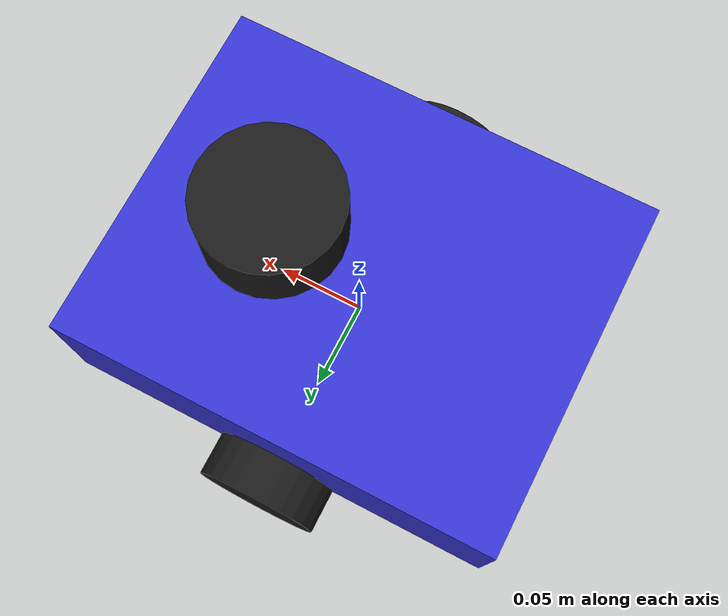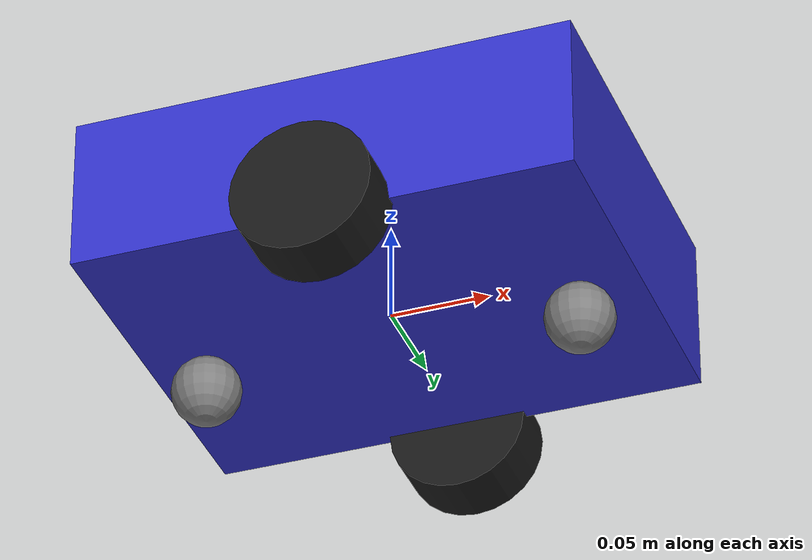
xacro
<?xml version="1.0"?>
<robot name="swarm_bot" xmlns:xacro="http://www.ros.org/wiki/xacro">

  <!-- ==================== NAMESPACE ARGUMENT ==================== -->
  <xacro:arg name="robot_namespace" default="robot_1"/>

  <!-- ==================== PROPERTIES ==================== -->
  <xacro:property name="ns" value="$(arg robot_namespace)"/>
  <xacro:property name="chassis_length" value="0.25"/>
  <xacro:property name="chassis_width" value="0.20"/>
  <xacro:property name="chassis_height" value="0.08"/>
  <xacro:property name="wheel_radius" value="0.035"/>
  <xacro:property name="wheel_width" value="0.03"/>
  <xacro:property name="wheelbase" value="0.22"/>
  <xacro:property name="chassis_mass" value="1.5"/>
  <xacro:property name="wheel_mass" value="0.1"/>

  <!-- ==================== BASE FOOTPRINT ==================== -->
  <link name="${ns}/base_footprint"/>

  <joint name="${ns}/base_footprint_joint" type="fixed">
    <parent link="${ns}/base_footprint"/>
    <child link="${ns}/base_link"/>
    <origin xyz="0 0 ${wheel_radius}" rpy="0 0 0"/>
  </joint>

  <!-- ==================== CHASSIS ==================== -->
  <link name="${ns}/base_link">
    <visual>
      <origin xyz="0 0 0" rpy="0 0 0"/>
      <geometry>
        <box size="${chassis_length} ${chassis_width} ${chassis_height}"/>
      </geometry>
      <material name="blue">
        <color rgba="0.2 0.2 0.8 1.0"/>
      </material>
    </visual>
    <collision>
      <origin xyz="0 0 0" rpy="0 0 0"/>
      <geometry>
        <box size="${chassis_length} ${chassis_width} ${chassis_height}"/>
      </geometry>
    </collision>
    <inertial>
      <mass value="${chassis_mass}"/>
      <inertia
        ixx="${chassis_mass*(chassis_width*chassis_width + chassis_height*chassis_height)/12}"
        ixy="0" ixz="0"
        iyy="${chassis_mass*(chassis_length*chassis_length + chassis_height*chassis_height)/12}"
        iyz="0"
        izz="${chassis_mass*(chassis_length*chassis_length + chassis_width*chassis_width)/12}"/>
    </inertial>
  </link>

  <!-- ==================== LEFT WHEEL ==================== -->
  <link name="${ns}/left_wheel">
    <visual>
      <origin xyz="0 0 0" rpy="1.5708 0 0"/>
      <geometry>
        <cylinder radius="${wheel_radius}" length="${wheel_width}"/>
      </geometry>
      <material name="black">
        <color rgba="0.1 0.1 0.1 1.0"/>
      </material>
    </visual>
    <collision>
      <origin xyz="0 0 0" rpy="1.5708 0 0"/>
      <geometry>
        <cylinder radius="${wheel_radius}" length="${wheel_width}"/>
      </geometry>
    </collision>
    <inertial>
      <mass value="${wheel_mass}"/>
      <inertia
        ixx="${wheel_mass*(3*wheel_radius*wheel_radius + wheel_width*wheel_width)/12}"
        ixy="0" ixz="0"
        iyy="${wheel_mass*(3*wheel_radius*wheel_radius + wheel_width*wheel_width)/12}"
        iyz="0"
        izz="${wheel_mass*wheel_radius*wheel_radius/2}"/>
    </inertial>
  </link>

  <joint name="${ns}/left_wheel_joint" type="continuous">
    <parent link="${ns}/base_link"/>
    <child link="${ns}/left_wheel"/>
    <origin xyz="0 ${wheelbase/2} ${-chassis_height/2}" rpy="0 0 0"/>
    <axis xyz="0 1 0"/>
  </joint>

  <!-- ==================== RIGHT WHEEL ==================== -->
  <link name="${ns}/right_wheel">
    <visual>
      <origin xyz="0 0 0" rpy="1.5708 0 0"/>
      <geometry>
        <cylinder radius="${wheel_radius}" length="${wheel_width}"/>
      </geometry>
      <material name="black">
        <color rgba="0.1 0.1 0.1 1.0"/>
      </material>
    </visual>
    <collision>
      <origin xyz="0 0 0" rpy="1.5708 0 0"/>
      <geometry>
        <cylinder radius="${wheel_radius}" length="${wheel_width}"/>
      </geometry>
    </collision>
    <inertial>
      <mass value="${wheel_mass}"/>
      <inertia
        ixx="${wheel_mass*(3*wheel_radius*wheel_radius + wheel_width*wheel_width)/12}"
        ixy="0" ixz="0"
        iyy="${wheel_mass*(3*wheel_radius*wheel_radius + wheel_width*wheel_width)/12}"
        iyz="0"
        izz="${wheel_mass*wheel_radius*wheel_radius/2}"/>
    </inertial>
  </link>

  <joint name="${ns}/right_wheel_joint" type="continuous">
    <parent link="${ns}/base_link"/>
    <child link="${ns}/right_wheel"/>
    <origin xyz="0 ${-wheelbase/2} ${-chassis_height/2}" rpy="0 0 0"/>
    <axis xyz="0 1 0"/>
  </joint>

  <!-- ==================== CASTER FRONT ==================== -->
  <link name="${ns}/caster_front">
    <visual>
      <geometry>
        <sphere radius="${wheel_radius/2}"/>
      </geometry>
      <material name="grey">
        <color rgba="0.5 0.5 0.5 1.0"/>
      </material>
    </visual>
    <collision>
      <geometry>
        <sphere radius="${wheel_radius/2}"/>
      </geometry>
    </collision>
    <inertial>
      <mass value="0.05"/>
      <inertia ixx="0.0001" ixy="0" ixz="0"
               iyy="0.0001" iyz="0" izz="0.0001"/>
    </inertial>
  </link>

  <joint name="${ns}/caster_front_joint" type="fixed">
    <parent link="${ns}/base_link"/>
    <child link="${ns}/caster_front"/>
    <origin xyz="${chassis_length/2 - 0.03} 0 ${-chassis_height/2 - wheel_radius/2}"/>
  </joint>

  <!-- ==================== CASTER REAR ==================== -->
  <link name="${ns}/caster_rear">
    <visual>
      <geometry>
        <sphere radius="${wheel_radius/2}"/>
      </geometry>
      <material name="grey">
        <color rgba="0.5 0.5 0.5 1.0"/>
      </material>
    </visual>
    <collision>
      <geometry>
        <sphere radius="${wheel_radius/2}"/>
      </geometry>
    </collision>
    <inertial>
      <mass value="0.05"/>
      <inertia ixx="0.0001" ixy="0" ixz="0"
               iyy="0.0001" iyz="0" izz="0.0001"/>
    </inertial>
  </link>

  <joint name="${ns}/caster_rear_joint" type="fixed">
    <parent link="${ns}/base_link"/>
    <child link="${ns}/caster_rear"/>
    <origin xyz="${-(chassis_length/2 - 0.03)} 0 ${-chassis_height/2 - wheel_radius/2}"/>
  </joint>

  <!-- ==================== LIDAR ==================== -->
  <link name="${ns}/lidar_link">
    <visual>
      <geometry>
        <cylinder radius="0.04" length="0.04"/>
      </geometry>
      <material name="black">
        <color rgba="0.1 0.1 0.1 1.0"/>
      </material>
    </visual>
    <collision>
      <geometry>
        <cylinder radius="0.04" length="0.04"/>
      </geometry>
    </collision>
    <inertial>
      <mass value="0.17"/>
      <inertia ixx="0.0001" ixy="0" ixz="0"
               iyy="0.0001" iyz="0" izz="0.0001"/>
    </inertial>
  </link>

  <joint name="${ns}/lidar_joint" type="fixed">
    <parent link="${ns}/base_link"/>
    <child link="${ns}/lidar_link"/>
    <origin xyz="0.05 0 ${chassis_height/2 + 0.02}" rpy="0 0 0"/>
  </joint>

  <!-- ==================== GAZEBO MATERIALS ==================== -->
  <gazebo reference="${ns}/base_link">
    <material>Gazebo/Blue</material>
  </gazebo>

  <gazebo reference="${ns}/left_wheel">
    <material>Gazebo/Black</material>
    <mu1>1.0</mu1>
    <mu2>1.0</mu2>
  </gazebo>

  <gazebo reference="${ns}/right_wheel">
    <material>Gazebo/Black</material>
    <mu1>1.0</mu1>
    <mu2>1.0</mu2>
  </gazebo>

  <gazebo reference="${ns}/caster_front">
    <material>Gazebo/Grey</material>
    <mu1>0.0</mu1>
    <mu2>0.0</mu2>
  </gazebo>

  <gazebo reference="${ns}/caster_rear">
    <material>Gazebo/Grey</material>
    <mu1>0.0</mu1>
    <mu2>0.0</mu2>
  </gazebo>

  <!-- ==================== DIFFERENTIAL DRIVE PLUGIN ==================== -->
  <gazebo>
    <plugin name="differential_drive_controller"
            filename="libgazebo_ros_diff_drive.so">
      <update_rate>30</update_rate>
      <left_joint>${ns}/left_wheel_joint</left_joint>
      <right_joint>${ns}/right_wheel_joint</right_joint>
      <wheel_separation>${wheelbase}</wheel_separation>
      <wheel_diameter>${2*wheel_radius}</wheel_diameter>
      <max_wheel_torque>20</max_wheel_torque>
      <max_wheel_acceleration>1.0</max_wheel_acceleration>
      <command_topic>${ns}/cmd_vel</command_topic>
      <publish_odom>true</publish_odom>
      <publish_odom_tf>true</publish_odom_tf>
      <publish_wheel_tf>false</publish_wheel_tf>
      <odometry_frame>${ns}/odom</odometry_frame>
      <robot_base_frame>${ns}/base_footprint</robot_base_frame>
    </plugin>
  </gazebo>

  <!-- ==================== LIDAR PLUGIN ==================== -->
  <gazebo reference="${ns}/lidar_link">
    <sensor name="lidar" type="ray">
      <always_on>true</always_on>
      <visualize>true</visualize>
      <update_rate>5.5</update_rate>
      <ray>
        <scan>
          <horizontal>
            <samples>360</samples>
            <resolution>1</resolution>
            <min_angle>-3.14159</min_angle>
            <max_angle>3.14159</max_angle>
          </horizontal>
        </scan>
        <range>
          <min>0.15</min>
          <max>6.0</max>
          <resolution>0.01</resolution>
        </range>
        <noise>
          <type>gaussian</type>
          <mean>0.0</mean>
          <stddev>0.01</stddev>
        </noise>
      </ray>
      <plugin name="scan" filename="libgazebo_ros_ray_sensor.so">
        <ros>
          <namespace>/${ns}</namespace>
          <remapping>~/out:=scan</remapping>
        </ros>
        <output_type>sensor_msgs/LaserScan</output_type>
        <frame_name>${ns}/lidar_link</frame_name>
      </plugin>
    </sensor>
  </gazebo>

</robot>
